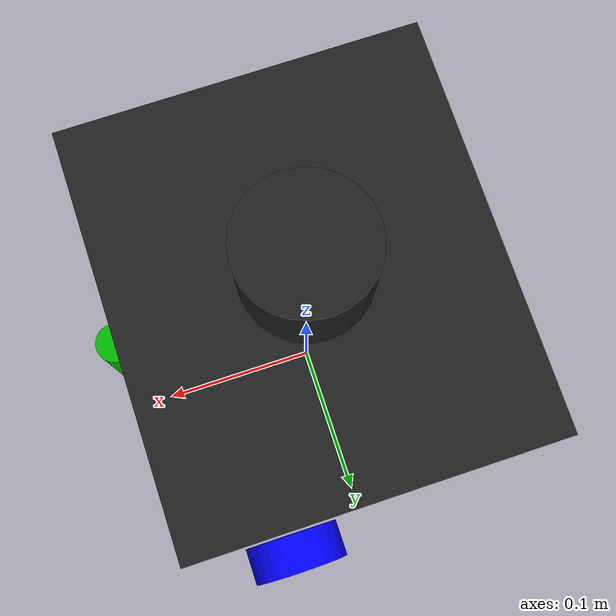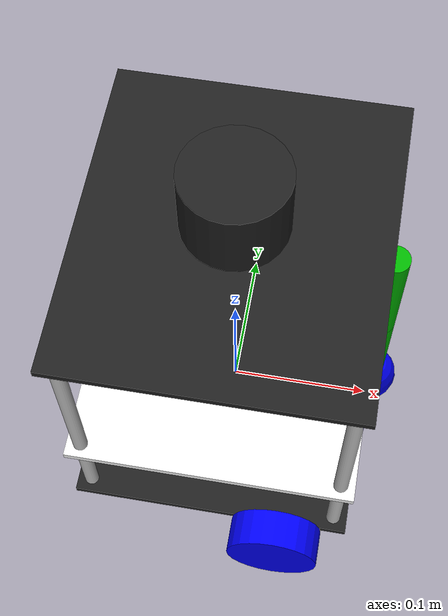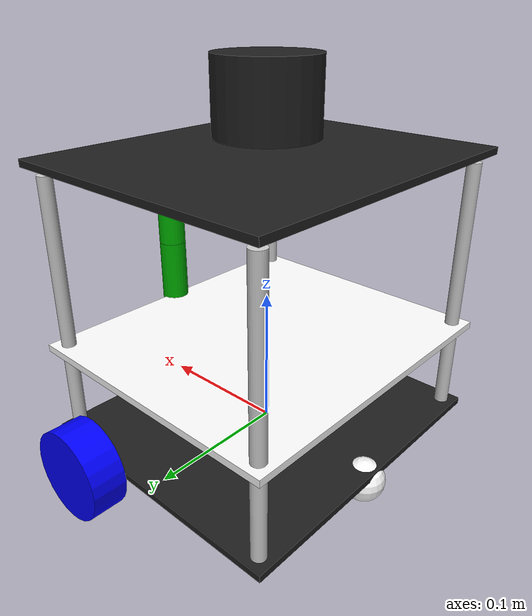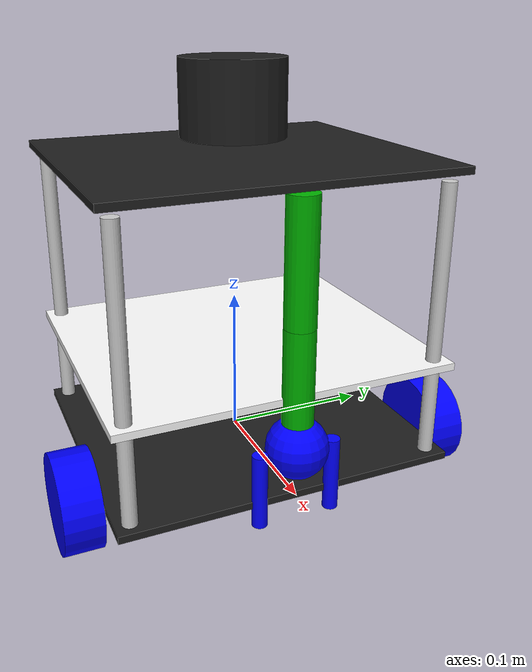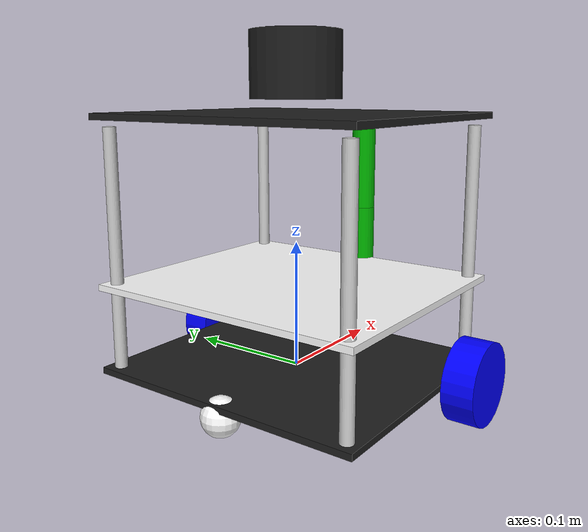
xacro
<?xml version="1.0"?>
<robot name="visual">

  <!-- Определения материалов -->
  <material name="blue">
    <color rgba="0 0 1 1"/>
  </material>
  <material name="yellow">
    <color rgba="0.5 0.2 0 1"/>
  </material>
  <material name="white">
    <color rgba="1 1 1 1"/>
  </material>
  <material name="green">
    <color rgba="0 0.7 0 1"/>
  </material>

  <!-- Корневое звено -->
  <link name="odom"/>

  <!-- ========== Первый уровень: основная платформа ========== -->
  <link name="base_link">
    <visual>
      <geometry>
        <box size="0.2 0.23 0.005"/>
      </geometry>
      <material name="black"/>
    </visual>
    <collision>
      <geometry>
        <box size="0.2 0.23 0.005"/>
      </geometry>
    </collision>
    <inertial>
      <mass value="1.5"/>
      <inertia ixx="1e-3" ixy="0" ixz="0"
               iyy="1e-3" iyz="0" izz="1e-3"/>
    </inertial>
  </link>
  <joint name="base_link_joint" type="fixed">
    <parent link="odom"/>
    <child link="base_link"/>
    <origin xyz="0 0 0" rpy="0 0 0"/>
  </joint>

    <!-- Материал для стоек (пример: серебристый) -->
  <material name="silver">
    <color rgba="0.8 0.8 0.8 1.0"/>
  </material>

  <!-- Четыре стойки (палки) от base_link к верхней платформе
       Диаметр 10 мм => радиус 0.005 м
       Длина ~0.19 м (от z=0.005 до z=0.195)
       Располагаем их в углах (x=±0.09, y=±0.105) -->

  <!-- Левая передняя стойка -->
  <link name="rod_front_left">
    <visual>
      <!-- Поднимаем её центр на середину (0.095), смещаем в угол (x=+0.09, y=+0.105) -->
      <origin xyz="0.09 0.105 0.095" rpy="0 0 0"/>
      <geometry>
        <cylinder length="0.19" radius="0.005"/>
      </geometry>
      <material name="silver"/>
    </visual>
    <collision>
      <origin xyz="0.09 0.105 0.095" rpy="0 0 0"/>
      <geometry>
        <cylinder length="0.19" radius="0.005"/>
      </geometry>
    </collision>
    <inertial>
      <mass value="0.05"/>
      <origin xyz="0.09 0.105 0.095" rpy="0 0 0"/>
      <inertia ixx="1e-5" ixy="0" ixz="0"
               iyy="1e-5" iyz="0" izz="1e-5"/>
    </inertial>
  </link>
  <joint name="rod_front_left_joint" type="fixed">
    <parent link="base_link"/>
    <child link="rod_front_left"/>
    <origin xyz="0 0 0" rpy="0 0 0"/>
  </joint>

  <!-- Правая передняя стойка -->
  <link name="rod_front_right">
    <visual>
      <origin xyz="0.09 -0.105 0.095" rpy="0 0 0"/>
      <geometry>
        <cylinder length="0.19" radius="0.005"/>
      </geometry>
      <material name="silver"/>
    </visual>
    <collision>
      <origin xyz="0.09 -0.105 0.095" rpy="0 0 0"/>
      <geometry>
        <cylinder length="0.19" radius="0.005"/>
      </geometry>
    </collision>
    <inertial>
      <mass value="0.05"/>
      <origin xyz="0.09 -0.105 0.095" rpy="0 0 0"/>
      <inertia ixx="1e-5" ixy="0" ixz="0"
               iyy="1e-5" iyz="0" izz="1e-5"/>
    </inertial>
  </link>
  <joint name="rod_front_right_joint" type="fixed">
    <parent link="base_link"/>
    <child link="rod_front_right"/>
    <origin xyz="0 0 0" rpy="0 0 0"/>
  </joint>

  <!-- Левая задняя стойка -->
  <link name="rod_rear_left">
    <visual>
      <origin xyz="-0.09 0.105 0.095" rpy="0 0 0"/>
      <geometry>
        <cylinder length="0.19" radius="0.005"/>
      </geometry>
      <material name="silver"/>
    </visual>
    <collision>
      <origin xyz="-0.09 0.105 0.095" rpy="0 0 0"/>
      <geometry>
        <cylinder length="0.19" radius="0.005"/>
      </geometry>
    </collision>
    <inertial>
      <mass value="0.05"/>
      <origin xyz="-0.09 0.105 0.095" rpy="0 0 0"/>
      <inertia ixx="1e-5" ixy="0" ixz="0"
               iyy="1e-5" iyz="0" izz="1e-5"/>
    </inertial>
  </link>
  <joint name="rod_rear_left_joint" type="fixed">
    <parent link="base_link"/>
    <child link="rod_rear_left"/>
    <origin xyz="0 0 0" rpy="0 0 0"/>
  </joint>

  <!-- Правая задняя стойка -->
  <link name="rod_rear_right">
    <visual>
      <origin xyz="-0.09 -0.105 0.095" rpy="0 0 0"/>
      <geometry>
        <cylinder length="0.19" radius="0.005"/>
      </geometry>
      <material name="silver"/>
    </visual>
    <collision>
      <origin xyz="-0.09 -0.105 0.095" rpy="0 0 0"/>
      <geometry>
        <cylinder length="0.19" radius="0.005"/>
      </geometry>
    </collision>
    <inertial>
      <mass value="0.05"/>
      <origin xyz="-0.09 -0.105 0.095" rpy="0 0 0"/>
      <inertia ixx="1e-5" ixy="0" ixz="0"
               iyy="1e-5" iyz="0" izz="1e-5"/>
    </inertial>
  </link>
  <joint name="rod_rear_right_joint" type="fixed">
    <parent link="base_link"/>
    <child link="rod_rear_right"/>
    <origin xyz="0 0 0" rpy="0 0 0"/>
  </joint>

  <!-- Колёсная база (левая сторона) -->
  <link name="left_base">
    <visual>
      <geometry>
        <box size="0.01 0.01 0.01"/>
      </geometry>
    </visual>
  </link>
  <joint name="left_base_joint" type="fixed">
    <parent link="base_link"/>
    <child link="left_base"/>
    <origin xyz="0.05 0.13 0" rpy="0 0 0"/>
  </joint>
  <link name="left_wheel">
    <visual>
      <origin rpy="1.57075 0 0" xyz="0 0 0"/>
      <geometry>
        <cylinder length="0.025" radius="0.0325"/>
      </geometry>
      <material name="blue"/>
    </visual>
    <collision>
      <origin rpy="1.57075 0 0" xyz="0 0 0"/>
      <geometry>
        <cylinder length="0.025" radius="0.0325"/>
      </geometry>
    </collision>
    <inertial>
      <mass value="1"/>
      <inertia ixx="1e-3" ixy="0" ixz="0"
               iyy="1e-3" iyz="0" izz="1e-3"/>
    </inertial>
  </link>
  <joint name="left_wheel_joint" type="continuous">
    <axis xyz="0 1 0"/>
    <parent link="left_base"/>
    <child link="left_wheel"/>
    <origin xyz="0 0 0" rpy="0 0 0"/>
    <command_interface name="velocity"/>
    <state_interface name="position"/>
    <state_interface name="velocity"/>
  </joint>

  <!-- Колёсная база (правая сторона) -->
  <link name="right_base">
    <visual>
      <geometry>
        <box size="0.01 0.01 0.01"/>
      </geometry>
    </visual>
  </link>
  <joint name="right_base_joint" type="fixed">
    <parent link="base_link"/>
    <child link="right_base"/>
    <origin xyz="0.05 -0.13 0" rpy="0 0 0"/>
  </joint>
  <link name="right_wheel">
    <visual>
      <origin rpy="1.57075 0 0" xyz="0 0 0"/>
      <geometry>
        <cylinder length="0.025" radius="0.0325"/>
      </geometry>
      <material name="blue"/>
    </visual>
    <collision>
      <origin rpy="1.57075 0 0" xyz="0 0 0"/>
      <geometry>
        <cylinder length="0.025" radius="0.0325"/>
      </geometry>
    </collision>
    <inertial>
      <mass value="1"/>
      <inertia ixx="1e-3" ixy="0" ixz="0"
               iyy="1e-3" iyz="0" izz="1e-3"/>
    </inertial>
  </link>
  <joint name="right_wheel_joint" type="continuous">
    <axis xyz="0 1 0"/>
    <parent link="right_base"/>
    <child link="right_wheel"/>
    <origin xyz="0 0 0" rpy="0 0 0"/>
    <command_interface name="velocity"/>
    <state_interface name="position"/>
    <state_interface name="velocity"/>
  </joint>

  <!-- Caster (опорное колесо) -->
  <link name="caster_wheel">
    <visual>
      <origin xyz="0 0 0" rpy="0 0 0"/>
      <geometry>
        <sphere radius="0.015"/>
      </geometry>
      <material name="white"/>
    </visual>
    <collision>
      <origin xyz="0 0 0" rpy="0 0 0"/>
      <geometry>
        <sphere radius="0.015"/>
      </geometry>
    </collision>
    <inertial>
      <mass value="0.1"/>
      <inertia ixx="1e-4" ixy="0" ixz="0"
               iyy="1e-3" iyz="0" izz="1e-3"/>
    </inertial>
  </link>
  <joint name="caster_wheel_joint" type="fixed">
    <parent link="base_link"/>
    <child link="caster_wheel"/>
    <origin xyz="-0.09 0 -0.01" rpy="0 0 0"/>
  </joint>

  <!-- ========== Второй уровень: плата электроники ========== -->
  <link name="electronics_plate">
    <visual>
      <!-- Нижняя поверхность на 0.0025 м -->
      <origin xyz="0 0 0.0025" rpy="0 0 0"/>
      <geometry>
        <box size="0.2 0.23 0.005"/>
      </geometry>
      <material name="white"/>
    </visual>
    <collision>
      <origin xyz="0 0 0.0025" rpy="0 0 0"/>
      <geometry>
        <box size="0.2 0.23 0.005"/>
      </geometry>
    </collision>
    <inertial>
      <mass value="0.3"/>
      <origin xyz="0 0 0.0025" rpy="0 0 0"/>
      <inertia ixx="1e-4" ixy="0" ixz="0"
               iyy="1e-4" iyz="0" izz="1e-4"/>
    </inertial>
  </link>
  <joint name="electronics_plate_joint" type="fixed">
    <parent link="base_link"/>
    <child link="electronics_plate"/>
    <origin xyz="0 0 0.065" rpy="0 0 0"/>
  </joint>

  <!-- ========== Третий уровень: верхняя платформа ========== -->
  <link name="top_plate">
    <visual>
      <origin xyz="0 0 0.0025" rpy="0 0 0"/>
      <geometry>
        <box size="0.2 0.23 0.005"/>
      </geometry>
      <material name="black"/>
    </visual>
    <collision>
      <origin xyz="0 0 0.0025" rpy="0 0 0"/>
      <geometry>
        <box size="0.2 0.23 0.005"/>
      </geometry>
    </collision>
    <inertial>
      <mass value="0.8"/>
      <origin xyz="0 0 0.0025" rpy="0 0 0"/>
      <inertia ixx="1e-4" ixy="0" ixz="0"
               iyy="1e-4" iyz="0" izz="1e-4"/>
    </inertial>
  </link>
  <joint name="top_plate_joint" type="fixed">
    <parent link="electronics_plate"/>
    <child link="top_plate"/>
    <origin xyz="0 0 0.130" rpy="0 0 0"/>
  </joint>

  <!-- ========== Манипулятор (установлен на верхней платформе) ========== -->
  <!-- Сустав плеча: сдвигаем манипулятор вперёд на 0.05 м -->
  <joint name="arm_shoulder_joint" type="revolute">
    <parent link="top_plate"/>
    <child link="arm_link1"/>
    <origin xyz="0.1 0 0" rpy="0 0 0"/>
    <!-- Используем ось вращения по Y для движения в плоскости (наклон вниз/вверх) -->
    <axis xyz="0 1 0"/>
    <limit lower="-1.57" upper="1.57" effort="5.0" velocity="1.0"/>
  </joint>

  <!-- Первое звено манипулятора (плечо), направлено вниз -->
  <link name="arm_link1">
    <visual>
      <!-- Сдвиг на -0.04 по Z: центр звена ниже сочленения;
           поворот на 180° по X (3.1416 рад) переворачивает звено -->
      <origin xyz="0 0 -0.04" rpy="3.1416 0 0"/>
      <geometry>
        <cylinder length="0.08" radius="0.01"/>
      </geometry>
      <material name="green"/>
    </visual>
    <collision>
      <origin xyz="0 0 -0.04" rpy="3.1416 0 0"/>
      <geometry>
        <cylinder length="0.08" radius="0.01"/>
      </geometry>
    </collision>
    <inertial>
      <mass value="0.2"/>
      <origin xyz="0 0 -0.04" rpy="3.1416 0 0"/>
      <inertia ixx="1e-3" ixy="0" ixz="0"
               iyy="1e-3" iyz="0" izz="1e-3"/>
    </inertial>
  </link>

  <!-- Сустав локтя: теперь расположен в конце первого звена -->
  <joint name="arm_elbow_joint" type="revolute">
    <parent link="arm_link1"/>
    <child link="arm_link2"/>
    <origin xyz="0 0 -0.08" rpy="0 0 0"/>
    <axis xyz="0 1 0"/>
    <limit lower="0" upper="2.8" effort="5.0" velocity="1.0"/>
  </joint>

  <!-- Второе звено манипулятора (локоть), также направлено вниз -->
  <link name="arm_link2">
    <visual>
      <origin xyz="0 0 -0.04" rpy="3.1416 0 0"/>
      <geometry>
        <cylinder length="0.08" radius="0.01"/>
      </geometry>
      <material name="green"/>
    </visual>
    <collision>
      <origin xyz="0 0 -0.04" rpy="3.1416 0 0"/>
      <geometry>
        <cylinder length="0.08" radius="0.01"/>
      </geometry>
    </collision>
    <inertial>
      <mass value="0.2"/>
      <origin xyz="0 0 -0.04" rpy="3.1416 0 0"/>
      <inertia ixx="1e-3" ixy="0" ixz="0"
               iyy="1e-3" iyz="0" izz="1e-3"/>
    </inertial>
  </link>

  <!-- Фиксированный сустав для крепления гриппера -->
  <joint name="wrist_joint" type="fixed">
    <parent link="arm_link2"/>
    <child link="gripper_base"/>
    <origin xyz="0 0 -0.08" rpy="0 0 0"/>
  </joint>

  <!-- Гриппер (база захвата) -->
<link name="gripper_base">
  <visual>
    <origin xyz="0 0 0" rpy="0 0 0"/>
    <geometry>
      <sphere radius="0.02"/>
    </geometry>
    <material name="blue"/>
  </visual>
  <collision>
    <origin xyz="0 0 0" rpy="0 0 0"/>
    <geometry>
      <sphere radius="0.01"/>
    </geometry>
  </collision>
  <inertial>
    <mass value="0.1"/>
    <origin xyz="0 0 0" rpy="0 0 0"/>
    <inertia ixx="1e-4" ixy="0" ixz="0"
             iyy="1e-4" iyz="0" izz="1e-4"/>
  </inertial>
</link>

<!-- Левый палец -->
<link name="finger_left">
  <visual>
    <origin xyz="0 0.025 -0.015" rpy="0 0 90"/>
    <geometry>
      <cylinder length="0.05" radius="0.005"/>
    </geometry>
    <material name="blue"/>
  </visual>
  <collision>
    <origin xyz="0 0.025 -0.015" rpy="0 0 90"/>
    <geometry>
      <cylinder length="0.05" radius="0.005"/>
    </geometry>
  </collision>
  <inertial>
    <mass value="0.01"/>
    <origin xyz="0 0.025 -0.015" rpy="0 0 90"/>
    <inertia ixx="1e-4" ixy="0" ixz="0"
             iyy="1e-4" iyz="0" izz="1e-4"/>
  </inertial>
</link>
<joint name="finger_left_joint" type="revolute">
  <parent link="gripper_base"/>
  <child link="finger_left"/>
  <origin xyz="0 0 -0.01" rpy="0 0 0"/>
  <axis xyz="-1 0 0"/><!-- Исправлено направление вращения -->
  <limit lower="0" upper="0.5" effort="2.0" velocity="1.0"/>
</joint>

<!-- Правый палец -->
<link name="finger_right">
  <visual>
    <origin xyz="0 -0.025 -0.015" rpy="0 0 90"/>
    <geometry>
      <cylinder length="0.05" radius="0.005"/>
    </geometry>
    <material name="blue"/>
  </visual>
  <collision>
    <origin xyz="0 -0.025 -0.015" rpy="0 0 90"/>
    <geometry>
      <cylinder length="0.05" radius="0.005"/>
    </geometry>
  </collision>
  <inertial>
    <mass value="0.01"/>
    <origin xyz="0 -0.025 -0.015" rpy="0 0 90"/>
    <inertia ixx="1e-4" ixy="0" ixz="0"
             iyy="1e-4" iyz="0" izz="1e-4"/>
  </inertial>
</link>
<joint name="finger_right_joint" type="revolute">
  <parent link="gripper_base"/>
  <child link="finger_right"/>
  <origin xyz="0 0 -0.01" rpy="0 0 0"/>
  <axis xyz="1 0 0"/>
  <limit lower="0" upper="0.5" effort="2.0" velocity="1.0"/>
</joint>

  <!-- ========== Лидар (на верхней платформе) ========== -->
  <link name="lidar_link">
    <visual>
      <origin xyz="0 0 0.04" rpy="0 0 0"/>
      <geometry>
        <cylinder radius="0.035" length="0.05"/>
      </geometry>
      <material name="black"/>
    </visual>
    <collision>
      <origin xyz="0 0 0.04" rpy="0 0 0"/>
      <geometry>
        <cylinder radius="0.035" length="0.05"/>
      </geometry>
    </collision>
    <inertial>
      <mass value="0.2"/>
      <origin xyz="0 0 0.04" rpy="0 0 0"/>
      <inertia ixx="1e-4" ixy="0" ixz="0"
               iyy="1e-4" iyz="0" izz="1e-4"/>
    </inertial>
  </link>
  <joint name="lidar_joint" type="fixed">
    <parent link="top_plate"/>
    <child link="lidar_link"/>
    <origin xyz="0 0 0" rpy="0 0 0"/>
  </joint>

  <!-- ========== ros2_control (управление колесами) ========== -->
  <ros2_control name="my_robot_hardware" type="system">
    <hardware>
      <plugin>mock_components/GenericSystem</plugin>
      <param name="update_rate" type="int">50</param>
      <param name="calculate_dynamics" type="bool">true</param>
    </hardware>
    <joint name="left_wheel_joint">
      <command_interface name="velocity"/>
      <state_interface name="position"/>
      <state_interface name="velocity"/>
    </joint>
    <joint name="right_wheel_joint">
      <command_interface name="velocity"/>
      <state_interface name="position"/>
      <state_interface name="velocity"/>
    </joint>
  </ros2_control>

</robot>
